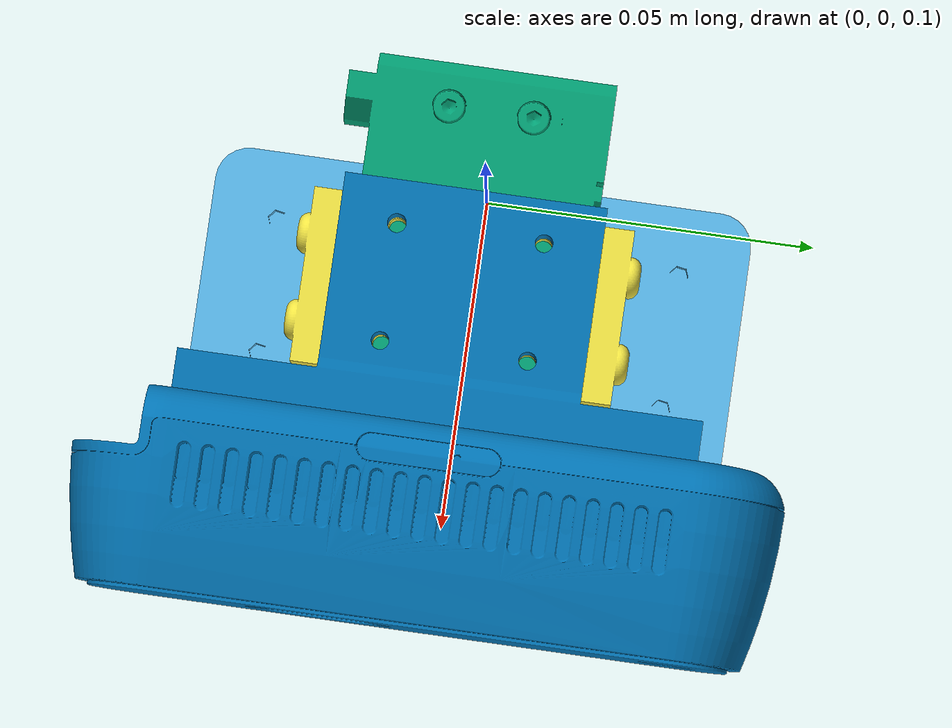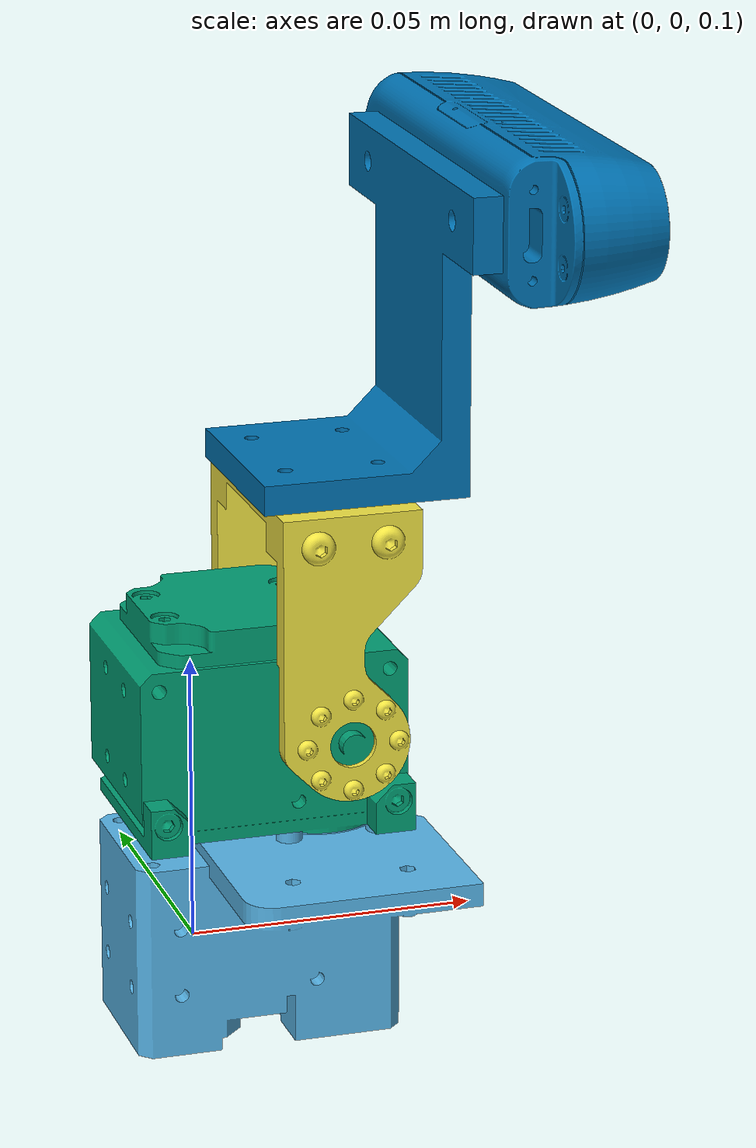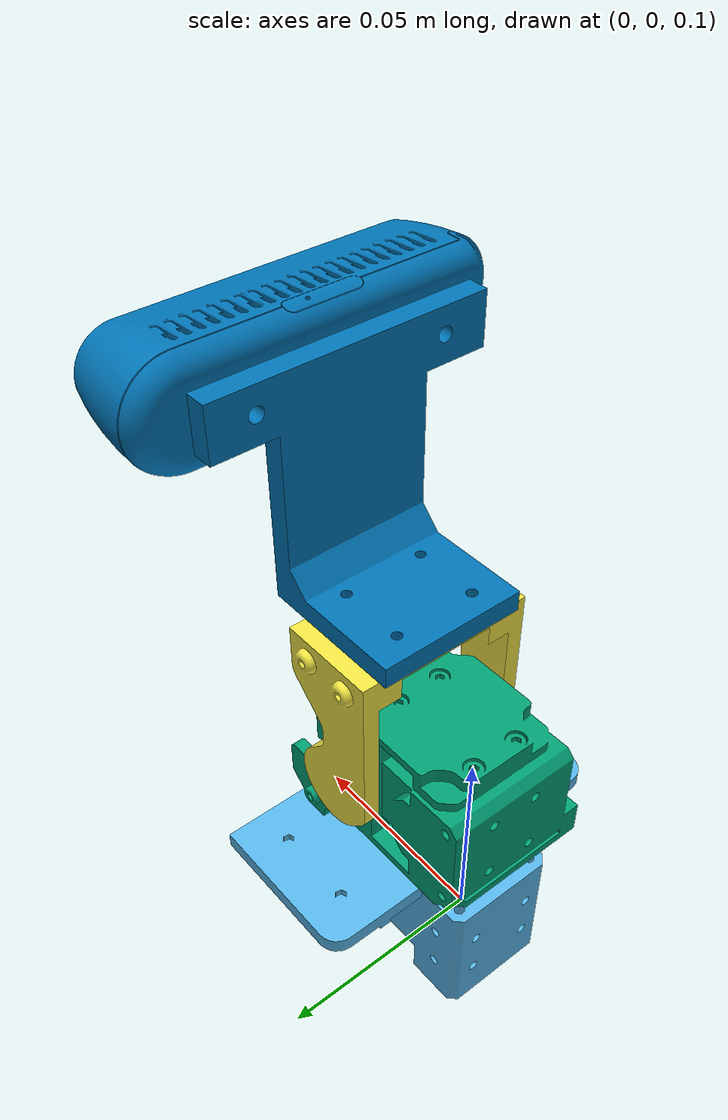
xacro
<?xml version="1.0"?>
<!-- Direct xacro translation of head_with_mit_camera_mount.urdf. -->
<robot xmlns:xacro="http://www.ros.org/wiki/xacro" name="rby1_head">

  <xacro:arg name="mesh_root" default="ruby/rby1_description_drake/meshes"/>
  <xacro:property name="mesh_dir" value="$(arg mesh_root)"/>

  <!-- Links -->

  <link name="link_head_base"/>

  <link name="link_head_0">
    <inertial>
      <mass value="0.07582110"/>
      <origin rpy="0 0 0" xyz="-0.00800549 0.0 -0.01100308"/>
      <inertia ixx="0.00003307" ixy="0.0" ixz="-0.00000290" iyy="0.00002209" iyz="0.0"
        izz="0.00003796"/>
    </inertial>

    <visual>
      <origin xyz="0 0 0" rpy="1.57079632679 0 0"/>
      <geometry>
        <mesh filename="${mesh_dir}/PAN_TILT_1.obj"/>
      </geometry>
    </visual>

    <!-- Conservative geometry to protect sensor head. -->
    <collision>
      <origin xyz="0 0 0.04" rpy="0 0 0"/>
      <geometry>
        <sphere radius="0.12"/>
      </geometry>
    </collision>
  </link>

  <link name="link_head_1">
    <inertial>
      <mass value="0.07450580"/>
      <origin rpy="0 0 0" xyz="-0.01150679 -0.00114270 -0.00031579"/>
      <inertia ixx="0.00001850" ixy="-0.00000035" ixz="0.00000203" iyy="0.00002451"
        iyz="-0.00000010" izz="0.00002062"/>
    </inertial>

    <visual>
      <origin xyz="0 0 0" rpy="1.57079632679 0 0"/>
      <geometry>
        <mesh filename="${mesh_dir}/PAN_TILT_2.obj"/>
      </geometry>
    </visual>
  </link>

  <link name="link_head_2">
    <inertial>
      <mass value="0.03585374"/>
      <origin rpy="0 0 0" xyz="-0.00081966 0.00099024 0.02283704"/>
      <inertia ixx="0.00002046" ixy="0.00000001" ixz="-0.00000027" iyy="0.00001044" iyz="0.00000076"
        izz="0.00001291"/>
    </inertial>

    <visual>
      <origin xyz="0 0 0" rpy="1.57079632679 0 0"/>
      <geometry>
        <mesh filename="${mesh_dir}/PAN_TILT_3.obj"/>
      </geometry>
    </visual>
  </link>

  <!-- BEGIN: Camera mount on MIT's RB-Y1 (Ruby) -->
  <link name="rby1_camera_mount">
    <visual>
      <geometry>
        <mesh filename="${mesh_dir}/rby1_camera_mount_realsense.obj"/>
      </geometry>
    </visual>
  </link>
  <!-- END: Camera mount on MIT's RB-Y1 (Ruby) -->

  <!-- Joints -->

  <joint name="head_base" type="fixed">
    <parent link="link_head_base"/>
    <child link="link_head_0"/>
    <origin rpy="0.0 0.0 0.0" xyz="0.022 0.0 0.120073451525"/>
    <axis xyz="0 0 1"/>
  </joint>

  <joint name="head_0" type="revolute">
    <parent link="link_head_0"/>
    <child link="link_head_1"/>
    <origin rpy="0.0 0.0 0.0" xyz="0.0 0.0 0.02"/>
    <axis xyz="0 0 1"/>
    <limit effort="1000" velocity="3.14" lower="-0.523" upper="0.523"/>
  </joint>

  <joint name="head_1" type="revolute">
    <parent link="link_head_1"/>
    <child link="link_head_2"/>
    <origin rpy="0.0 0.0 0.0" xyz="0.0 0.0 0.0"/>
    <axis xyz="0 1 0"/>
    <limit effort="1000" velocity="3.14" lower="-0.35" upper="1.57"/>
  </joint>

  <!-- BEGIN: Camera mount on MIT's RB-Y1 (Ruby) -->
  <joint name="head_mount" type="fixed">
    <parent link="link_head_2"/>
    <child link="rby1_camera_mount"/>
    <origin rpy="0.0 0.0 0.0" xyz="0.0 0.0 0.04"/>
    <axis xyz="0 0 1"/>
  </joint>
  <!-- END: Camera mount on MIT's RB-Y1 (Ruby) -->

  <!-- Transmissions -->

  <transmission name="head_0_transmission">
    <type>transmission_interface/SimpleTransmission</type>
    <joint name="head_0">
      <hardwareInterface>PositionJointInterface</hardwareInterface>
    </joint>
    <actuator name="head_0_motor">
      <hardwareInterface>PositionJointInterface</hardwareInterface>
      <mechanicalReduction>1</mechanicalReduction>
    </actuator>
  </transmission>

  <transmission name="head_1_transmission">
    <type>transmission_interface/SimpleTransmission</type>
    <joint name="head_1">
      <hardwareInterface>PositionJointInterface</hardwareInterface>
    </joint>
    <actuator name="head_1_motor">
      <hardwareInterface>PositionJointInterface</hardwareInterface>
      <mechanicalReduction>1</mechanicalReduction>
    </actuator>
  </transmission>

</robot>
